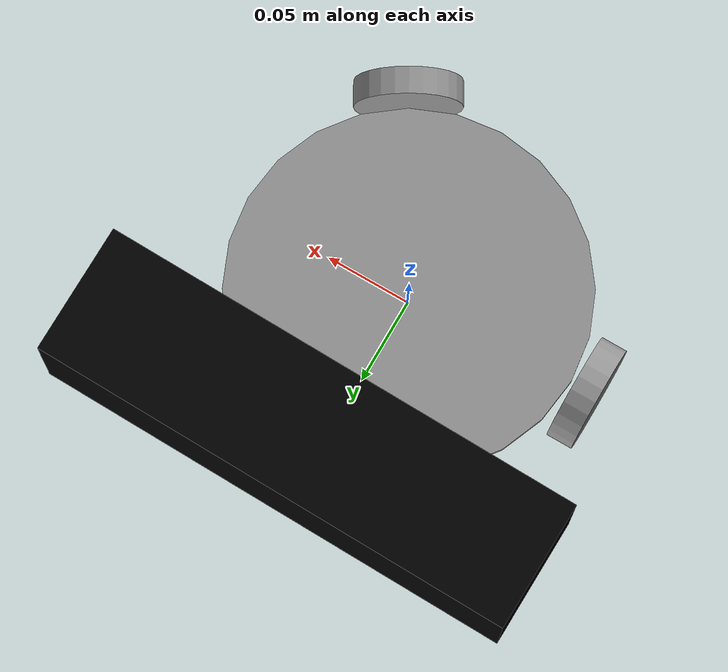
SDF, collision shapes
<?xml version='1.0'?>
<sdf version='1.6'>
  <model name='triton'>
    <link name='link_1'>
      <inertial>
        <mass>1</mass>
        <inertia>
          <ixx>0.145833</ixx>
          <ixy>0</ixy>
          <ixz>0</ixz>
          <iyy>0.145833</iyy>
          <iyz>0</iyz>
          <izz>0.125</izz>
        </inertia>
        <pose frame=''>0 0 0 0 -0 0</pose>
      </inertial>
      <pose frame=''>-0 0 0.035 0 -0 0</pose>
      <gravity>1</gravity>
      <self_collide>0</self_collide>
      <kinematic>0</kinematic>
      <enable_wind>0</enable_wind>
      <visual name='visual'>
        <pose frame=''>0 0 0 0 -0 0</pose>
        <geometry>
          <mesh>
            <uri>model://triton/meshes/triton.dae</uri>
          </mesh>
        </geometry>
        <material>
          <lighting>1</lighting>
          <script>
            <uri>file://media/materials/scripts/gazebo.material</uri>
            <name>Gazebo/Grey</name>
          </script>
          <shader type='pixel'>
            <normal_map>__default__</normal_map>
          </shader>
          <ambient>0.4 0.4 0.4 1</ambient>
          <diffuse>1 1 1 1</diffuse>
          <specular>0.01 0.01 0.01 1</specular>
          <emissive>0 0 0 1</emissive>
        </material>
        <transparency>0</transparency>
        <cast_shadows>1</cast_shadows>
      </visual>
      <collision name='collision'>
        <laser_retro>0</laser_retro>
        <max_contacts>10</max_contacts>
        <pose frame=''>0 0 0 0 -0 0</pose>
        <geometry>
          <cylinder>
            <radius>0.1</radius>
            <length>0.004</length>
          </cylinder>
        </geometry>
        <surface>
          <friction>
            <ode>
              <mu>1</mu>
              <mu2>1</mu2>
              <fdir1>0 0 0</fdir1>
              <slip1>0</slip1>
              <slip2>0</slip2>
            </ode>
            <torsional>
              <coefficient>1</coefficient>
              <patch_radius>0</patch_radius>
              <surface_radius>0</surface_radius>
              <use_patch_radius>1</use_patch_radius>
              <ode>
                <slip>0</slip>
              </ode>
            </torsional>
          </friction>
          <bounce>
            <restitution_coefficient>0</restitution_coefficient>
            <threshold>1e+06</threshold>
          </bounce>
          <contact>
            <collide_without_contact>0</collide_without_contact>
            <collide_without_contact_bitmask>1</collide_without_contact_bitmask>
            <collide_bitmask>1</collide_bitmask>
            <ode>
              <soft_cfm>0</soft_cfm>
              <soft_erp>0.2</soft_erp>
              <kp>1e+13</kp>
              <kd>1</kd>
              <max_vel>0.01</max_vel>
              <min_depth>0</min_depth>
            </ode>
            <bullet>
              <split_impulse>1</split_impulse>
              <split_impulse_penetration_threshold>-0.01</split_impulse_penetration_threshold>
              <soft_cfm>0</soft_cfm>
              <soft_erp>0.2</soft_erp>
              <kp>1e+13</kp>
              <kd>1</kd>
            </bullet>
          </contact>
        </surface>
      </collision>
    </link>
    <link name='link_1_0_clone'>
      <inertial>
        <mass>1</mass>
        <inertia>
          <ixx>0.145833</ixx>
          <ixy>0</ixy>
          <ixz>0</ixz>
          <iyy>0.145833</iyy>
          <iyz>0</iyz>
          <izz>0.125</izz>
        </inertia>
        <pose frame=''>0 0 0 0 -0 0</pose>
      </inertial>
      <pose frame=''>0.055 0.095 0.03 2.09445 1.57 6.4e-05</pose>
      <gravity>1</gravity>
      <self_collide>0</self_collide>
      <kinematic>0</kinematic>
      <enable_wind>0</enable_wind>
      <visual name='visual_0'>
        <pose frame=''>0 0 0 0 -0 0</pose>
        <geometry>
          <cylinder>
            <radius>0.03</radius>
            <length>0.015</length>
          </cylinder>
        </geometry>
        <material>
          <lighting>1</lighting>
          <script>
            <uri>file://media/materials/scripts/gazebo.material</uri>
            <name>Gazebo/Grey</name>
          </script>
          <shader type='pixel'>
            <normal_map>__default__</normal_map>
          </shader>
          <ambient>0.3 0.3 0.3 1</ambient>
          <diffuse>0.7 0.7 0.7 1</diffuse>
          <specular>0.01 0.01 0.01 1</specular>
          <emissive>0 0 0 1</emissive>
        </material>
        <transparency>1</transparency>
        <cast_shadows>1</cast_shadows>
      </visual>
      <collision name='collision'>
        <laser_retro>0</laser_retro>
        <max_contacts>10</max_contacts>
        <pose frame=''>0 0 0 0 -0 0</pose>
        <geometry>
          <cylinder>
            <radius>0.03</radius>
            <length>0.015</length>
          </cylinder>
        </geometry>
        <surface>
          <friction>
            <ode>
              <mu>1</mu>
              <mu2>1</mu2>
              <fdir1>0 0 0</fdir1>
              <slip1>0</slip1>
              <slip2>0</slip2>
            </ode>
            <torsional>
              <coefficient>1</coefficient>
              <patch_radius>0</patch_radius>
              <surface_radius>0</surface_radius>
              <use_patch_radius>1</use_patch_radius>
              <ode>
                <slip>0</slip>
              </ode>
            </torsional>
          </friction>
          <bounce>
            <restitution_coefficient>0</restitution_coefficient>
            <threshold>1e+06</threshold>
          </bounce>
          <contact>
            <collide_without_contact>0</collide_without_contact>
            <collide_without_contact_bitmask>1</collide_without_contact_bitmask>
            <collide_bitmask>1</collide_bitmask>
            <ode>
              <soft_cfm>0</soft_cfm>
              <soft_erp>0.2</soft_erp>
              <kp>1e+13</kp>
              <kd>1</kd>
              <max_vel>0.01</max_vel>
              <min_depth>0</min_depth>
            </ode>
            <bullet>
              <split_impulse>1</split_impulse>
              <split_impulse_penetration_threshold>-0.01</split_impulse_penetration_threshold>
              <soft_cfm>0</soft_cfm>
              <soft_erp>0.2</soft_erp>
              <kp>1e+13</kp>
              <kd>1</kd>
            </bullet>
          </contact>
        </surface>
      </collision>
    </link>
    <link name='link_1_0_clone_clone'>
      <inertial>
        <mass>1</mass>
        <inertia>
          <ixx>0.145833</ixx>
          <ixy>0</ixy>
          <ixz>0</ixz>
          <iyy>0.145833</iyy>
          <iyz>0</iyz>
          <izz>0.125</izz>
        </inertia>
        <pose frame=''>0 0 0 0 -0 0</pose>
      </inertial>
      <pose frame=''>0.055 -0.095 0.03 -2.0943 1.57 5.9e-05</pose>
      <gravity>1</gravity>
      <self_collide>0</self_collide>
      <kinematic>0</kinematic>
      <enable_wind>0</enable_wind>
      <visual name='visual_0'>
        <pose frame=''>0 0 0 0 -0 0</pose>
        <geometry>
          <cylinder>
            <radius>0.03</radius>
            <length>0.015</length>
          </cylinder>
        </geometry>
        <material>
          <lighting>1</lighting>
          <script>
            <uri>file://media/materials/scripts/gazebo.material</uri>
            <name>Gazebo/Grey</name>
          </script>
          <shader type='pixel'>
            <normal_map>__default__</normal_map>
          </shader>
          <ambient>0.3 0.3 0.3 1</ambient>
          <diffuse>0.7 0.7 0.7 1</diffuse>
          <specular>0.01 0.01 0.01 1</specular>
          <emissive>0 0 0 1</emissive>
        </material>
        <transparency>1</transparency>
        <cast_shadows>1</cast_shadows>
      </visual>
      <collision name='collision'>
        <laser_retro>0</laser_retro>
        <max_contacts>10</max_contacts>
        <pose frame=''>0 0 0 0 -0 0</pose>
        <geometry>
          <cylinder>
            <radius>0.03</radius>
            <length>0.015</length>
          </cylinder>
        </geometry>
        <surface>
          <friction>
            <ode>
              <mu>1</mu>
              <mu2>1</mu2>
              <fdir1>0 0 0</fdir1>
              <slip1>0</slip1>
              <slip2>0</slip2>
            </ode>
            <torsional>
              <coefficient>1</coefficient>
              <patch_radius>0</patch_radius>
              <surface_radius>0</surface_radius>
              <use_patch_radius>1</use_patch_radius>
              <ode>
                <slip>0</slip>
              </ode>
            </torsional>
          </friction>
          <bounce>
            <restitution_coefficient>0</restitution_coefficient>
            <threshold>1e+06</threshold>
          </bounce>
          <contact>
            <collide_without_contact>0</collide_without_contact>
            <collide_without_contact_bitmask>1</collide_without_contact_bitmask>
            <collide_bitmask>1</collide_bitmask>
            <ode>
              <soft_cfm>0</soft_cfm>
              <soft_erp>0.2</soft_erp>
              <kp>1e+13</kp>
              <kd>1</kd>
              <max_vel>0.01</max_vel>
              <min_depth>0</min_depth>
            </ode>
            <bullet>
              <split_impulse>1</split_impulse>
              <split_impulse_penetration_threshold>-0.01</split_impulse_penetration_threshold>
              <soft_cfm>0</soft_cfm>
              <soft_erp>0.2</soft_erp>
              <kp>1e+13</kp>
              <kd>1</kd>
            </bullet>
          </contact>
        </surface>
      </collision>
    </link>
    <link name='link_1_0_clone_clone_0'>
      <inertial>
        <mass>1</mass>
        <inertia>
          <ixx>0.145833</ixx>
          <ixy>0</ixy>
          <ixz>0</ixz>
          <iyy>0.145833</iyy>
          <iyz>0</iyz>
          <izz>0.125</izz>
        </inertia>
        <pose frame=''>0 0 0 0 -0 0</pose>
      </inertial>
      <pose frame=''>-0.11 0 0.03 7.9e-05 1.57 7.3e-05</pose>
      <gravity>1</gravity>
      <self_collide>0</self_collide>
      <kinematic>0</kinematic>
      <enable_wind>0</enable_wind>
      <visual name='visual_0'>
        <pose frame=''>0 0 0 0 -0 0</pose>
        <geometry>
          <cylinder>
            <radius>0.03</radius>
            <length>0.015</length>
          </cylinder>
        </geometry>
        <material>
          <lighting>1</lighting>
          <script>
            <uri>file://media/materials/scripts/gazebo.material</uri>
            <name>Gazebo/Grey</name>
          </script>
          <shader type='pixel'>
            <normal_map>__default__</normal_map>
          </shader>
          <ambient>0.3 0.3 0.3 1</ambient>
          <diffuse>0.7 0.7 0.7 1</diffuse>
          <specular>0.01 0.01 0.01 1</specular>
          <emissive>0 0 0 1</emissive>
        </material>
        <transparency>1</transparency>
        <cast_shadows>1</cast_shadows>
      </visual>
      <collision name='collision'>
        <laser_retro>0</laser_retro>
        <max_contacts>10</max_contacts>
        <pose frame=''>0 0 0 0 -0 0</pose>
        <geometry>
          <cylinder>
            <radius>0.03</radius>
            <length>0.015</length>
          </cylinder>
        </geometry>
        <surface>
          <friction>
            <ode>
              <mu>1</mu>
              <mu2>1</mu2>
              <fdir1>0 0 0</fdir1>
              <slip1>0</slip1>
              <slip2>0</slip2>
            </ode>
            <torsional>
              <coefficient>1</coefficient>
              <patch_radius>0</patch_radius>
              <surface_radius>0</surface_radius>
              <use_patch_radius>1</use_patch_radius>
              <ode>
                <slip>0</slip>
              </ode>
            </torsional>
          </friction>
          <bounce>
            <restitution_coefficient>0</restitution_coefficient>
            <threshold>1e+06</threshold>
          </bounce>
          <contact>
            <collide_without_contact>0</collide_without_contact>
            <collide_without_contact_bitmask>1</collide_without_contact_bitmask>
            <collide_bitmask>1</collide_bitmask>
            <ode>
              <soft_cfm>0</soft_cfm>
              <soft_erp>0.2</soft_erp>
              <kp>1e+13</kp>
              <kd>1</kd>
              <max_vel>0.01</max_vel>
              <min_depth>0</min_depth>
            </ode>
            <bullet>
              <split_impulse>1</split_impulse>
              <split_impulse_penetration_threshold>-0.01</split_impulse_penetration_threshold>
              <soft_cfm>0</soft_cfm>
              <soft_erp>0.2</soft_erp>
              <kp>1e+13</kp>
              <kd>1</kd>
            </bullet>
          </contact>
        </surface>
      </collision>
    </link>
    <model name='transparent_kinect'>
      <link name='link'>
        <inertial>
          <mass>0.1</mass>
          <pose frame=''>0 0 0 0 -0 0</pose>
          <inertia>
            <ixx>1</ixx>
            <ixy>0</ixy>
            <ixz>0</ixz>
            <iyy>1</iyy>
            <iyz>0</iyz>
            <izz>1</izz>
          </inertia>
        </inertial>
        <sensor name='camera' type='depth'>
          <update_rate>20</update_rate>
          <camera name='__default__'>
            <horizontal_fov>2.0472</horizontal_fov>
            <image>
              <width>640</width>
              <height>480</height>
              <format>R8G8B8</format>
            </image>
            <clip>
              <near>0.05</near>
              <far>10</far>
            </clip>
          </camera>
          <plugin name='camera_plugin' filename='libgazebo_ros_openni_kinect.so'>
            <baseline>0.2</baseline>
            <alwaysOn>1</alwaysOn>
            <updateRate>0.0</updateRate>
            <cameraName>camera_ir</cameraName>
            <imageTopicName>/camera/color/image_raw</imageTopicName>
            <cameraInfoTopicName>/camera/color/camera_info</cameraInfoTopicName>
            <depthImageTopicName>/camera/depth/image_raw</depthImageTopicName>
            <depthImageCameraInfoTopicName>/camera/depth/camera_info</depthImageCameraInfoTopicName>
            <pointCloudTopicName>/camera/depth/points</pointCloudTopicName>
            <frameName>camera_link</frameName>
            <pointCloudCutoff>0.5</pointCloudCutoff>
            <pointCloudCutoffMax>3.0</pointCloudCutoffMax>
            <distortionK1>0</distortionK1>
            <distortionK2>0</distortionK2>
            <distortionK3>0</distortionK3>
            <distortionT1>0</distortionT1>
            <distortionT2>0</distortionT2>
            <CxPrime>0</CxPrime>
            <Cx>0</Cx>
            <Cy>0</Cy>
            <focalLength>0</focalLength>
            <hackBaseline>0</hackBaseline>
          </plugin>
        </sensor>
        <self_collide>0</self_collide>
        <enable_wind>0</enable_wind>
        <kinematic>0</kinematic>
        <pose frame=''>0 0 0 0 -0 0</pose>
        <gravity>1</gravity>
        <visual name='visual'>
          <geometry>
            <mesh>
              <uri>model://kinect/meshes/kinect.dae</uri>
            </mesh>
          </geometry>
          <material>
            <shader type='pixel'>
              <normal_map>__default__</normal_map>
            </shader>
            <script>
              <name>ModelPreview_3::link::visual_MATERIAL_</name>
              <uri>__default__</uri>
            </script>
            <ambient>0 0 0 1</ambient>
            <diffuse>0 0 0 1</diffuse>
            <specular>0 0 0 1</specular>
            <emissive>0 0 0 1</emissive>
          </material>
          <pose frame=''>0 0 0 0 -0 0</pose>
          <transparency>1</transparency>
          <cast_shadows>1</cast_shadows>
        </visual>
        <collision name='collision'>
          <laser_retro>0</laser_retro>
          <max_contacts>10</max_contacts>
          <pose frame=''>0 0 0 0 -0 0</pose>
          <geometry>
            <box>
              <size>0.073 0.276 0.072</size>
            </box>
          </geometry>
          <surface>
            <friction>
              <ode>
                <mu>1</mu>
                <mu2>1</mu2>
                <fdir1>0 0 0</fdir1>
                <slip1>0</slip1>
                <slip2>0</slip2>
              </ode>
              <torsional>
                <coefficient>1</coefficient>
                <patch_radius>0</patch_radius>
                <surface_radius>0</surface_radius>
                <use_patch_radius>1</use_patch_radius>
                <ode>
                  <slip>0</slip>
                </ode>
              </torsional>
            </friction>
            <bounce>
              <restitution_coefficient>0</restitution_coefficient>
              <threshold>1e+06</threshold>
            </bounce>
            <contact>
              <collide_without_contact>0</collide_without_contact>
              <collide_without_contact_bitmask>1</collide_without_contact_bitmask>
              <collide_bitmask>1</collide_bitmask>
              <ode>
                <soft_cfm>0</soft_cfm>
                <soft_erp>0.2</soft_erp>
                <kp>1e+13</kp>
                <kd>1</kd>
                <max_vel>0.01</max_vel>
                <min_depth>0</min_depth>
              </ode>
              <bullet>
                <split_impulse>1</split_impulse>
                <split_impulse_penetration_threshold>-0.01</split_impulse_penetration_threshold>
                <soft_cfm>0</soft_cfm>
                <soft_erp>0.2</soft_erp>
                <kp>1e+13</kp>
                <kd>1</kd>
              </bullet>
            </contact>
          </surface>
        </collision>
      </link>
      <static>0</static>
      <allow_auto_disable>1</allow_auto_disable>
      <pose frame=''>0.001944 0.103417 0.082858 0 0 1.55273</pose>
    </model>
    <joint name='link_1_JOINT_0' type='prismatic'>
      <parent>link_1</parent>
      <child>transparent_kinect::link</child>
      <pose frame=''>0 0 0 0 -0 0</pose>
      <axis>
        <xyz>0 0 1</xyz>
        <use_parent_model_frame>0</use_parent_model_frame>
        <limit>
          <lower>-1e+16</lower>
          <upper>1e+16</upper>
          <effort>-1</effort>
          <velocity>-1</velocity>
        </limit>
        <dynamics>
          <spring_reference>0</spring_reference>
          <spring_stiffness>0</spring_stiffness>
          <damping>0</damping>
          <friction>0</friction>
        </dynamics>
      </axis>
      <physics>
        <ode>
          <limit>
            <cfm>0</cfm>
            <erp>0.2</erp>
          </limit>
          <suspension>
            <cfm>0</cfm>
            <erp>0.2</erp>
          </suspension>
        </ode>
      </physics>
    </joint>
    <joint name='link_1_JOINT_1' type='revolute'>
      <parent>link_1</parent>
      <child>link_1_0_clone_clone_0</child>
      <pose frame=''>0 0 0 0 -0 0</pose>
      <axis>
        <xyz>0 0 1</xyz>
        <use_parent_model_frame>0</use_parent_model_frame>
        <limit>
          <lower>-1.79769e+308</lower>
          <upper>1.79769e+308</upper>
          <effort>-1</effort>
          <velocity>-1</velocity>
        </limit>
        <dynamics>
          <spring_reference>0</spring_reference>
          <spring_stiffness>0</spring_stiffness>
          <damping>0</damping>
          <friction>0</friction>
        </dynamics>
      </axis>
      <physics>
        <ode>
          <limit>
            <cfm>0</cfm>
            <erp>0.2</erp>
          </limit>
          <suspension>
            <cfm>0</cfm>
            <erp>0.2</erp>
          </suspension>
        </ode>
      </physics>
    </joint>
    <joint name='link_1_JOINT_2' type='revolute'>
      <parent>link_1</parent>
      <child>link_1_0_clone</child>
      <pose frame=''>0 0 0 0 -0 0</pose>
      <axis>
        <xyz>0 0 1</xyz>
        <use_parent_model_frame>0</use_parent_model_frame>
        <limit>
          <lower>-1.79769e+308</lower>
          <upper>1.79769e+308</upper>
          <effort>-1</effort>
          <velocity>-1</velocity>
        </limit>
        <dynamics>
          <spring_reference>0</spring_reference>
          <spring_stiffness>0</spring_stiffness>
          <damping>0</damping>
          <friction>0</friction>
        </dynamics>
      </axis>
      <physics>
        <ode>
          <limit>
            <cfm>0</cfm>
            <erp>0.2</erp>
          </limit>
          <suspension>
            <cfm>0</cfm>
            <erp>0.2</erp>
          </suspension>
        </ode>
      </physics>
    </joint>
    <joint name='link_1_JOINT_3' type='revolute'>
      <parent>link_1</parent>
      <child>link_1_0_clone_clone</child>
      <pose frame=''>0 0 0 0 -0 0</pose>
      <axis>
        <xyz>0 0 1</xyz>
        <use_parent_model_frame>0</use_parent_model_frame>
        <limit>
          <lower>-1.79769e+308</lower>
          <upper>1.79769e+308</upper>
          <effort>-1</effort>
          <velocity>-1</velocity>
        </limit>
        <dynamics>
          <spring_reference>0</spring_reference>
          <spring_stiffness>0</spring_stiffness>
          <damping>0</damping>
          <friction>0</friction>
        </dynamics>
      </axis>
      <physics>
        <ode>
          <limit>
            <cfm>0</cfm>
            <erp>0.2</erp>
          </limit>
          <suspension>
            <cfm>0</cfm>
            <erp>0.2</erp>
          </suspension>
        </ode>
      </physics>
    </joint>
    <static>0</static>
    <allow_auto_disable>1</allow_auto_disable>
    <plugin name='model_push' filename='libmodel_push.so'/>
  </model>
</sdf>
